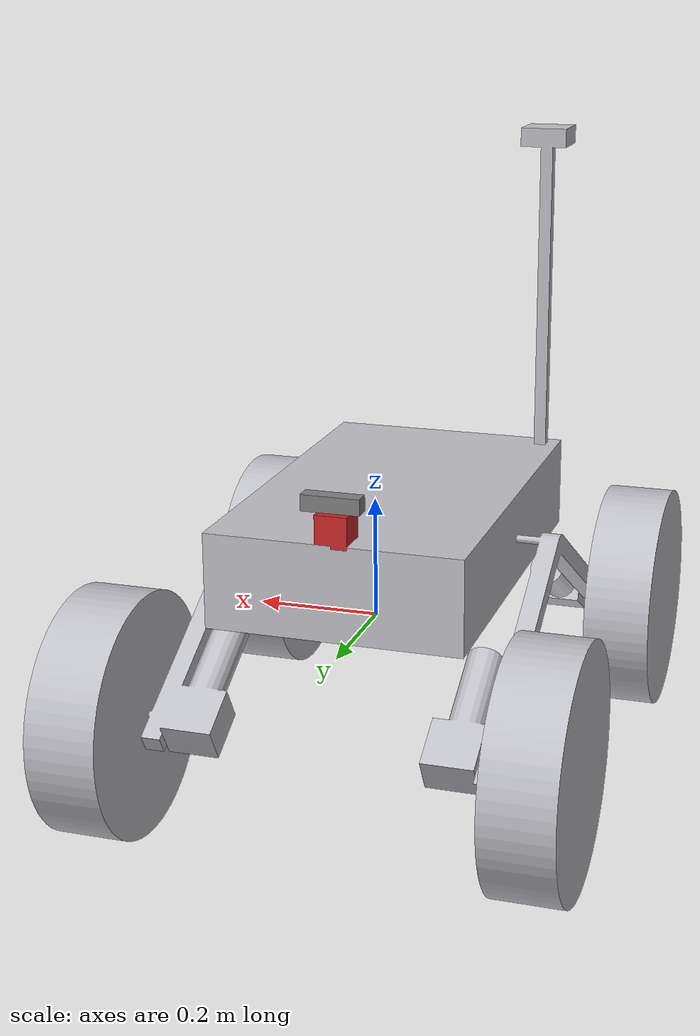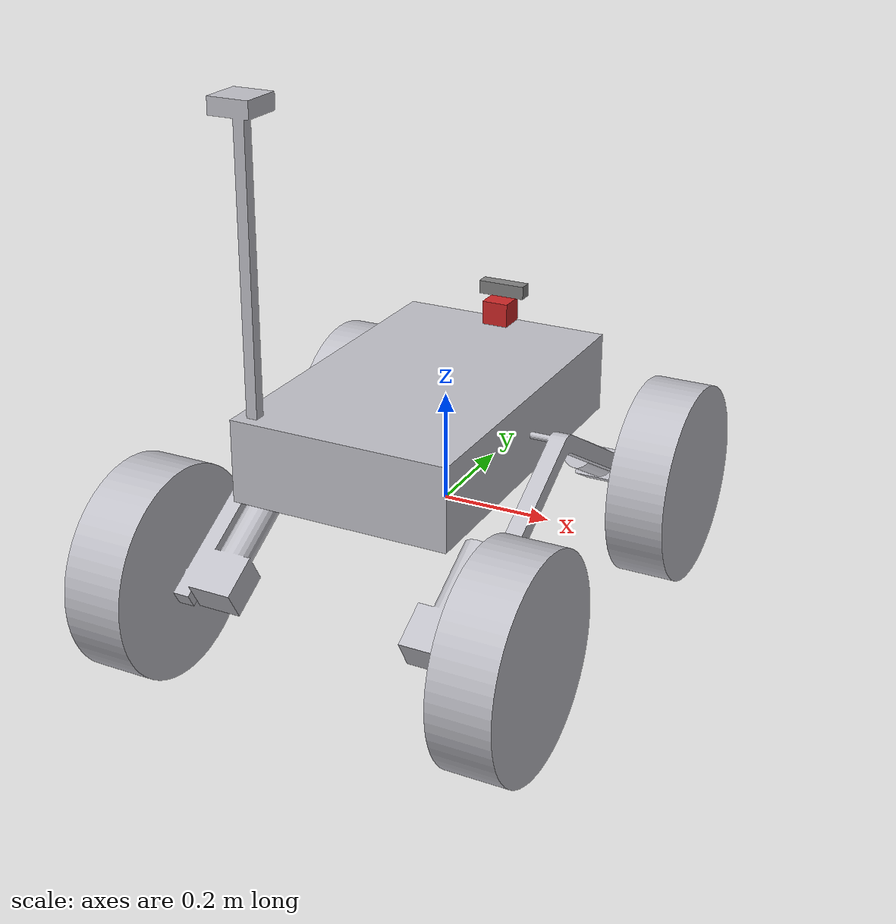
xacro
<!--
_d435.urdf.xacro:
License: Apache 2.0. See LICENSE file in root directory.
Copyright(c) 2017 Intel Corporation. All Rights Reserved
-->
<?xml version="1.0"?>
<robot name="rover" xmlns:xacro="http://www.ros.org/wiki/xacro">

<xacro:include filename="$(find rover_description)/urdf/materials.xacro" />
<xacro:include filename="$(find rover_description)/urdf/rover.trans" />
<xacro:include filename="$(find rover_description)/urdf/rover.gazebo" />
<xacro:include filename="$(find rover_description)/urdf/_d435.urdf.xacro" />

<!-- base_footprint Definition -->
<link name="base_footprint" />

<link name="base_link">
  <inertial>
    <origin xyz="-0.0016095177665624077 -0.0027929867125647263 0.07928163348576818" rpy="0 0 0"/>
    <mass value="20.0583312183218"/>
    <inertia ixx="12.286392" iyy="5.420217" izz="15.1977" ixy="-0.145354" iyz="0.38667" ixz="0.222827"/>
  </inertial>
  <visual>
    <origin xyz="0 0 0" rpy="0 0 0"/>
    <geometry>
      <mesh filename="package://rover_description/meshes/base_link.stl" scale="0.001 0.001 0.001"/>
    </geometry>
    <material name="silver"/>
  </visual>
  <collision>
    <origin xyz="0 0 0" rpy="0 0 0"/>
    <geometry>
      <mesh filename="package://rover_description/meshes/base_link.stl" scale="0.001 0.001 0.001"/>
    </geometry>
  </collision>
</link>

<joint name="body_joint" type="fixed">
    <origin xyz="-0.036 0 0.081" rpy="0 0 0" />
    <parent link="base_footprint" />
    <child  link="base_link" />
</joint>

<link name="chassis_1">
  <inertial>
    <origin xyz="0.03167866965335478 1.7687180528801824e-14 -0.15944646499867593" rpy="0 0 0"/>
    <mass value="18.08378086030487"/>
    <inertia ixx="1.630619" iyy="0.081138" izz="1.582709" ixy="0.0" iyz="0.0" ixz="-0.015402"/>
  </inertial>
  <visual>
    <origin xyz="-0.19 -0.0 -0.075" rpy="0 0 0"/>
    <geometry>
      <mesh filename="package://rover_description/meshes/chassis_1.stl" scale="0.001 0.001 0.001"/>
    </geometry>
    <material name="silver"/>
  </visual>
  <collision>
    <origin xyz="-0.19 -0.0 -0.075" rpy="0 0 0"/>
    <geometry>
      <mesh filename="package://rover_description/meshes/chassis_1.stl" scale="0.001 0.001 0.001"/>
    </geometry>
  </collision>
</link>

<link name="chassis_2_1">
  <inertial>
    <origin xyz="-0.03167866965335492 1.0738645321058275e-15 -0.15944646499867604" rpy="0 0 0"/>
    <mass value="18.083780860304827"/>
    <inertia ixx="1.630619" iyy="0.081138" izz="1.582709" ixy="0.0" iyz="-0.0" ixz="0.015402"/>
  </inertial>
  <visual>
    <origin xyz="0.19 -0.0 -0.075" rpy="0 0 0"/>
    <geometry>
      <mesh filename="package://rover_description/meshes/chassis_2_1.stl" scale="0.001 0.001 0.001"/>
    </geometry>
    <material name="silver"/>
  </visual>
  <collision>
    <origin xyz="0.19 -0.0 -0.075" rpy="0 0 0"/>
    <geometry>
      <mesh filename="package://rover_description/meshes/chassis_2_1.stl" scale="0.001 0.001 0.001"/>
    </geometry>
  </collision>
</link>

<link name="wheel_1_1">
  <inertial>
    <origin xyz="0.05499999999999994 3.3041053548732435e-07 5.551115123125783e-16" rpy="0 0 0"/>
    <mass value="5.93082575512982"/>
    <inertia ixx="1.767651" iyy="0.982573" izz="0.982573" ixy="0.0" iyz="0.0" ixz="0.0"/>
  </inertial>
  <visual>
    <origin xyz="-0.278 0.363731 0.135" rpy="0 0 0"/>
    <geometry>
      <mesh filename="package://rover_description/meshes/wheel_1_1.stl" scale="0.001 0.001 0.001"/>
    </geometry>
    <material name="silver"/>
  </visual>
  <collision>
    <origin xyz="-0.278 0.363731 0.135" rpy="0 0 0"/>
    <geometry>
      <mesh filename="package://rover_description/meshes/wheel_1_1.stl" scale="0.001 0.001 0.001"/>
    </geometry>
  </collision>
</link>

<link name="wheel_2_1">
  <inertial>
    <origin xyz="0.05499999999999994 -3.3041053537630205e-07 4.440892098500626e-16" rpy="0 0 0"/>
    <mass value="5.93082575512982"/>
    <inertia ixx="1.767651" iyy="0.982573" izz="0.982573" ixy="0.0" iyz="0.0" ixz="0.0"/>
  </inertial>
  <visual>
    <origin xyz="-0.278 -0.363731 0.135" rpy="0 0 0"/>
    <geometry>
      <mesh filename="package://rover_description/meshes/wheel_2_1.stl" scale="0.001 0.001 0.001"/>
    </geometry>
    <material name="silver"/>
  </visual>
  <collision>
    <origin xyz="-0.278 -0.363731 0.135" rpy="0 0 0"/>
    <geometry>
      <mesh filename="package://rover_description/meshes/wheel_2_1.stl" scale="0.001 0.001 0.001"/>
    </geometry>
  </collision>
</link>

<link name="wheel_4_1">
  <inertial>
    <origin xyz="-0.055000000000000104 3.3041053526527975e-07 4.718447854656915e-16" rpy="0 0 0"/>
    <mass value="5.9308257551298"/>
    <inertia ixx="1.767651" iyy="0.982573" izz="0.982573" ixy="0.0" iyz="0.0" ixz="0.0"/>
  </inertial>
  <visual>
    <origin xyz="0.278 0.363731 0.135" rpy="0 0 0"/>
    <geometry>
      <mesh filename="package://rover_description/meshes/wheel_4_1.stl" scale="0.001 0.001 0.001"/>
    </geometry>
    <material name="silver"/>
  </visual>
  <collision>
    <origin xyz="0.278 0.363731 0.135" rpy="0 0 0"/>
    <geometry>
      <mesh filename="package://rover_description/meshes/wheel_4_1.stl" scale="0.001 0.001 0.001"/>
    </geometry>
  </collision>
</link>

<link name="wheel_3_1">
  <inertial>
    <origin xyz="-0.05499999999999999 -3.304105354318132e-07 4.996003610813204e-16" rpy="0 0 0"/>
    <mass value="5.93082575512976"/>
    <inertia ixx="1.767651" iyy="0.982573" izz="0.982573" ixy="-0.0" iyz="-0.0" ixz="-0.0"/>
  </inertial>
  <visual>
    <origin xyz="0.278 -0.363731 0.135" rpy="0 0 0"/>
    <geometry>
      <mesh filename="package://rover_description/meshes/wheel_3_1.stl" scale="0.001 0.001 0.001"/>
    </geometry>
    <material name="silver"/>
  </visual>
  <collision>
    <origin xyz="0.278 -0.363731 0.135" rpy="0 0 0"/>
    <geometry>
      <mesh filename="package://rover_description/meshes/wheel_3_1.stl" scale="0.001 0.001 0.001"/>
    </geometry>
  </collision>
</link>

<joint name="j1" type="fixed">
  <origin xyz="0.19 0.0 0.075" rpy="0 0 0"/>
  <parent link="base_link"/>
  <child link="chassis_1"/>

</joint>

<joint name="j2" type="fixed">
  <origin xyz="-0.19 0.0 0.075" rpy="0 0 0"/>
  <parent link="base_link"/>
  <child link="chassis_2_1"/>

</joint>

<joint name="r1" type="continuous">
  <origin xyz="0.088 -0.363731 -0.21" rpy="0 0 0"/>
  <parent link="chassis_1"/>
  <child link="wheel_1_1"/>
  <axis xyz="-1.0 0.0 0.0"/>

      <limit effort="100" velocity="100"/>
      <joint_properties damping="0.0" friction="0.0"/>
</joint>

<joint name="r2" type="continuous">
  <origin xyz="0.088 0.363731 -0.21" rpy="0 0 0"/>
  <parent link="chassis_1"/>
  <child link="wheel_2_1"/>
  <axis xyz="-1.0 0.0 0.0"/>

      <limit effort="100" velocity="100"/>
      <joint_properties damping="0.0" friction="0.0"/>
</joint>

<joint name="l1" type="continuous">
  <origin xyz="-0.088 -0.363731 -0.21" rpy="0 0 0"/>
  <parent link="chassis_2_1"/>
  <child link="wheel_4_1"/>
  <axis xyz="-1.0 0.0 0.0"/>

      <limit effort="100" velocity="100"/>
      <joint_properties damping="0.0" friction="0.0"/>
</joint>

<joint name="l2" type="continuous">
  <origin xyz="-0.088 0.363731 -0.21" rpy="0 0 0"/>
  <parent link="chassis_2_1"/>
  <child link="wheel_3_1"/>
  <axis xyz="-1.0 0.0 0.0"/>

      <limit effort="100" velocity="100"/>
      <joint_properties damping="0.0" friction="0.0"/>
</joint>

<gazebo>
    <plugin name="differential_drive_controller"
      filename="libgazebo_ros_diff_drive.so">
      <commandTopic>cmd_vel</commandTopic>
      <odometryTopic>odom</odometryTopic>
      <odometryFrame>odom</odometryFrame>
      <odometrySource>world</odometrySource>
      <robotBaseFrame>base_link</robotBaseFrame>
      <publishOdomTF>true</publishOdomTF>
      <publishWheelTF>false</publishWheelTF>
      <publishTf>1</publishTf>
      <publishWheelJointState>false</publishWheelJointState>
      <legacyMode>false</legacyMode>
      <updateRate>30</updateRate>
      <leftJoint>l2</leftJoint>
      <rightJoint>r2</rightJoint>
      <wheelSeparation>0.160</wheelSeparation>
      <wheelDiameter>0.166</wheelDiameter>
      <wheelAcceleration>1.8</wheelAcceleration>
      <wheelTorque>50</wheelTorque>
      <rosDebugLevel>Debug</rosDebugLevel>
    </plugin>
  </gazebo>
  <gazebo>
    <plugin name="differential_drive_controller"
      filename="libgazebo_ros_diff_drive.so">
      <commandTopic>cmd_vel</commandTopic>
      <robotBaseFrame>base_link</robotBaseFrame>
      <publishWheelJointState>false</publishWheelJointState>
      <legacyMode>false</legacyMode>
      <updateRate>30</updateRate>
      <leftJoint>l1</leftJoint>
      <rightJoint>r1</rightJoint>
      <wheelSeparation>0.160</wheelSeparation>
      <wheelDiameter>0.166</wheelDiameter>
      <wheelAcceleration>1.8</wheelAcceleration>
      <wheelTorque>50</wheelTorque>
      <rosDebugLevel>Debug</rosDebugLevel>
    </plugin>
  </gazebo>

  <link name="gps_link" />
  <joint name="gps_joint" type="fixed">
    <parent link="base_link" />
    <child link="gps_link" />
  </joint>

  <gazebo>
      <plugin name="gps" filename="libhector_gazebo_ros_gps.so">
          <updateRate>10.0</updateRate>
          <topicName>gps/fix</topicName>
          <gaussianNoise>0.0 0.0 0.0</gaussianNoise>
          <offset>0 0 0</offset>
          <velocityGaussianNoise>0 0 0</velocityGaussianNoise>
          <frameId>gps_link</frameId>
      </plugin>
  </gazebo>

  <xacro:property name="camera_link" value="0.05" /> <!-- Size of square 'camera' box -->

  <joint name="camera_joint" type="fixed">
    <axis xyz="0 1 0" />
    <origin xyz="0.0 0.3 0.17" rpy="0 0 1.57"/>
    <parent link="base_link"/>
    <child link="camera_link"/>
  </joint>

  <!-- Camera -->
  <link name="camera_link">
    <collision>
      <origin xyz="0 0 0" rpy="0 0 0"/>
      <geometry>
    <box size="${camera_link} ${camera_link} ${camera_link}"/>
      </geometry>
    </collision>

    <visual>
      <origin xyz="0 0 0" rpy="0 0 0"/>
      <geometry>
    <box size="${camera_link} ${camera_link} ${camera_link}"/>
      </geometry>
      <material name="red"/>
    </visual>

    <inertial>
      <mass value="1e-5" />
      <origin xyz="0 0 0" rpy="0 0 0"/>
      <inertia ixx="1e-6" ixy="0" ixz="0" iyy="1e-6" iyz="0" izz="1e-6" />
    </inertial>
  </link>

   <gazebo reference="camera_link">
    <sensor type="camera" name="camera1">
      <update_rate>30.0</update_rate>
      <camera name="head">
        <horizontal_fov>1.3962634</horizontal_fov>
        <image>
          <width>640</width>
          <height>320</height>
          <format>R8G8B8</format>
        </image>
        <clip>
          <near>0.02</near>
          <far>300</far>
        </clip>
        <noise>
          <type>gaussian</type>
          <!-- Noise is sampled independently per pixel on each frame.
               That pixel's noise value is added to each of its color
               channels, which at that point lie in the range [0,1]. -->
          <mean>0.0</mean>
          <stddev>0.007</stddev>
        </noise>
      </camera>
      <plugin name="camera_controller" filename="libgazebo_ros_camera.so">
        <alwaysOn>true</alwaysOn>
        <updateRate>0.0</updateRate>
        <cameraName>camera1</cameraName>
        <imageTopicName>image_raw</imageTopicName>
        <cameraInfoTopicName>camera_info</cameraInfoTopicName>
        <frameName>camera_link</frameName>
        <hackBaseline>0.07</hackBaseline>
        <distortionK1>0.0</distortionK1>
        <distortionK2>0.0</distortionK2>
        <distortionK3>0.0</distortionK3>
        <distortionT1>0.0</distortionT1>
        <distortionT2>0.0</distortionT2>
      </plugin>
    </sensor>
  </gazebo>

  <xacro:sensor_d435 name="depthcamera" topics_ns="depth" parent="base_link" publish_pointcloud="true">
    <origin xyz="0 0.3 0.20" rpy="0 0 1.57" />
  </xacro:sensor_d435>

</robot>

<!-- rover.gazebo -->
<robot name="rover" xmlns:xacro="http://www.ros.org/wiki/xacro" >

<xacro:property name="body_color" value="Gazebo/Silver" />

<gazebo reference="base_link">
  <material>${body_color}</material>
  <mu1>1.0</mu1>
  <mu2>1.0</mu2>
  <turnGravityOff>false</turnGravityOff>
</gazebo>

<gazebo reference="chassis_1">
  <material>${body_color}</material>
  <mu1>1.0</mu1>
  <mu2>1.0</mu2>
  <turnGravityOff>false</turnGravityOff>
</gazebo>

<gazebo reference="chassis_2_1">
  <material>${body_color}</material>
  <mu1>1.0</mu1>
  <mu2>1.0</mu2>
  <turnGravityOff>false</turnGravityOff>
</gazebo>

<gazebo reference="wheel_1_1">
  <material>${body_color}</material>
  <mu1>1.0</mu1>
  <mu2>1.0</mu2>
  <kp  value="10000000.0" />
  <kd  value="1.0" />
  <fdir1 value="1 0 0"/>
  <turnGravityOff>false</turnGravityOff>
</gazebo>

<gazebo reference="wheel_2_1">
  <material>${body_color}</material>
  <mu1>1.0</mu1>
  <mu2>1.0</mu2>
  <kp  value="10000000.0" />
  <kd  value="1.0" />
  <fdir1 value="1 0 0"/>
  <turnGravityOff>false</turnGravityOff>
</gazebo>

<gazebo reference="wheel_4_1">
  <material>${body_color}</material>
  <mu1>1.0</mu1>
  <mu2>1.0</mu2>
  <kp  value="10000000.0" />
  <kd  value="1.0" />
  <fdir1 value="1 0 0"/>
  <turnGravityOff>false</turnGravityOff>
</gazebo>

<gazebo reference="wheel_3_1">
  <material>${body_color}</material>
  <mu1>1.0</mu1>
  <mu2>1.0</mu2>
  <kp  value="10000000.0" />
  <kd  value="1.0" />
  <fdir1 value="1 0 0"/>
  <turnGravityOff>false</turnGravityOff>
</gazebo>

</robot>

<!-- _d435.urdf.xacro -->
<robot name="sensor_d435" xmlns:xacro="http://ros.org/wiki/xacro">
  <!--File includes-->
  <xacro:include filename="$(find rover_description)/urdf/_d435.gazebo.xacro"/>

  <xacro:macro name="sensor_d435" params="name:=camera topics_ns:=camera parent *origin publish_pointcloud:=true">
    <xacro:property name="M_PI" value="3.1415926535897931" />

    <!-- The following values are approximate, and the camera node
     publishing TF values with actual calibrated camera extrinsic values -->
    <xacro:property name="d435_cam_depth_to_left_ir_offset" value="0.0"/>
    <xacro:property name="d435_cam_depth_to_right_ir_offset" value="-0.050"/>
    <xacro:property name="d435_cam_depth_to_color_offset" value="0.015"/>

    <!-- The following values model the aluminum peripherial case for the
    D435 camera, with the camera joint represented by the actual
    peripherial camera tripod mount -->
    <xacro:property name="d435_cam_width" value="0.090"/>
    <xacro:property name="d435_cam_height" value="0.025"/>
    <xacro:property name="d435_cam_depth" value="0.02505"/>
    <xacro:property name="d435_cam_mount_from_center_offset" value="0.0149"/>

    <!-- The following offset is relative the the physical D435 camera peripherial
    camera tripod mount -->
    <xacro:property name="d435_cam_depth_px" value="${d435_cam_mount_from_center_offset}"/>
    <xacro:property name="d435_cam_depth_py" value="0.0175"/>
    <xacro:property name="d435_cam_depth_pz" value="${d435_cam_height/2}"/>

    <material name="${name}_aluminum">
    <color rgba="0.5 0.5 0.5 1"/>
    </material>

    <!-- camera body, with origin at bottom screw mount -->
    <joint name="${name}_joint" type="fixed">
      <xacro:insert_block name="origin" />
      <parent link="${parent}"/>
      <child link="${name}_bottom_screw_frame" />
    </joint>
    <link name="${name}_bottom_screw_frame"/>

    <joint name="${name}_link_joint" type="fixed">
      <origin xyz="0 ${d435_cam_depth_py} ${d435_cam_depth_pz}" rpy="0 0 0"/>
      <parent link="${name}_bottom_screw_frame"/>
      <child link="${name}_link" />
    </joint>

    <link name="${name}_link">
      <visual>
      <origin xyz="${d435_cam_mount_from_center_offset} ${-d435_cam_depth_py} 0" rpy="${M_PI/2} 0 ${M_PI/2}"/>
        <geometry>
          <box size="${d435_cam_width} ${d435_cam_height} ${d435_cam_depth}"/>
        </geometry>
        <material name="${name}_aluminum"/>
      </visual>
      <collision>
        <origin xyz="0 ${-d435_cam_depth_py} 0" rpy="0 0 0"/>
        <geometry>
        <box size="${d435_cam_depth} ${d435_cam_width} ${d435_cam_height}"/>
        </geometry>
      </collision>
      <inertial>
        <!-- The following are not reliable values, and should not be used for modeling -->
        <mass value="0.564" />
        <origin xyz="0 0 0" />
        <inertia ixx="0.003881243" ixy="0.0" ixz="0.0" iyy="0.000498940" iyz="0.0" izz="0.003879257" />
      </inertial>
    </link>

    <!-- camera depth joints and links -->
    <joint name="${name}_depth_joint" type="fixed">
      <origin xyz="0 0 0" rpy="0 0 0"/>
      <parent link="${name}_link"/>
      <child link="${name}_depth_frame" />
    </joint>
    <link name="${name}_depth_frame"/>

    <joint name="${name}_depth_optical_joint" type="fixed">
      <origin xyz="0 0 0" rpy="${-M_PI/2} 0 ${-M_PI/2}" />
      <parent link="${name}_depth_frame" />
      <child link="${name}_depth_optical_frame" />
    </joint>
    <link name="${name}_depth_optical_frame"/>

    <!-- camera left IR joints and links -->
    <joint name="${name}_left_ir_joint" type="fixed">
      <origin xyz="0 ${d435_cam_depth_to_left_ir_offset} 0" rpy="0 0 0" />
      <parent link="${name}_depth_frame" />
      <child link="${name}_left_ir_frame" />
    </joint>
    <link name="${name}_left_ir_frame"/>

    <joint name="${name}_left_ir_optical_joint" type="fixed">
      <origin xyz="0 0 0" rpy="${-M_PI/2} 0 ${-M_PI/2}" />
      <parent link="${name}_left_ir_frame" />
      <child link="${name}_left_ir_optical_frame" />
    </joint>
    <link name="${name}_left_ir_optical_frame"/>

    <!-- camera right IR joints and links -->
    <joint name="${name}_right_ir_joint" type="fixed">
      <origin xyz="0 ${d435_cam_depth_to_right_ir_offset} 0" rpy="0 0 0" />
      <parent link="${name}_depth_frame" />
      <child link="${name}_right_ir_frame" />
    </joint>
    <link name="${name}_right_ir_frame"/>

    <joint name="${name}_right_ir_optical_joint" type="fixed">
      <origin xyz="0 0 0" rpy="${-M_PI/2} 0 ${-M_PI/2}" />
      <parent link="${name}_right_ir_frame" />
      <child link="${name}_right_ir_optical_frame" />
    </joint>
    <link name="${name}_right_ir_optical_frame"/>

    <!-- camera color joints and links -->
    <joint name="${name}_color_joint" type="fixed">
      <origin xyz="0 ${d435_cam_depth_to_color_offset} 0" rpy="0 0 0" />
      <parent link="${name}_depth_frame" />
      <child link="${name}_color_frame" />
    </joint>
    <link name="${name}_color_frame"/>

    <joint name="${name}_color_optical_joint" type="fixed">
      <origin xyz="0 0 0" rpy="${-M_PI/2} 0 ${-M_PI/2}" />
      <parent link="${name}_color_frame" />
      <child link="${name}_color_optical_frame" />
    </joint>
    <link name="${name}_color_optical_frame"/>

    <!-- Realsense Gazebo Plugin -->
    <xacro:gazebo_d435 camera_name="${name}" reference_link="${name}_link" topics_ns="${topics_ns}" depth_optical_frame="${name}_depth_optical_frame" color_optical_frame="${name}_color_optical_frame" infrared1_optical_frame="${name}_left_ir_optical_frame" infrared2_optical_frame="${name}_right_ir_optical_frame" publish_pointcloud="${publish_pointcloud}"/>

  </xacro:macro>
</robot>
